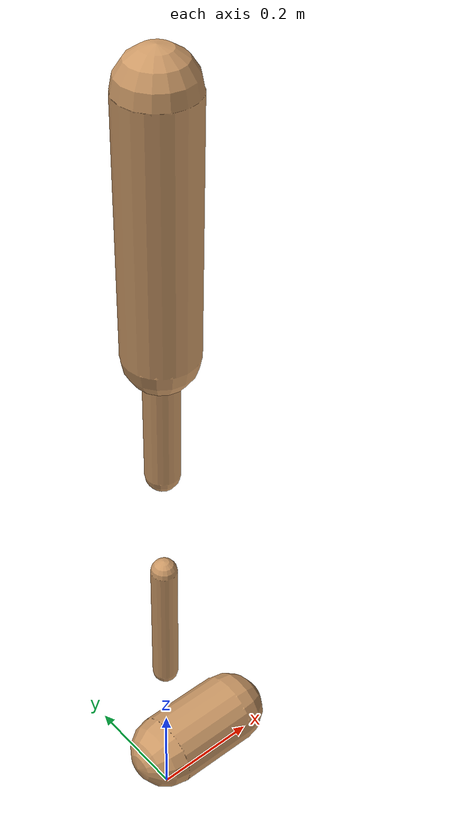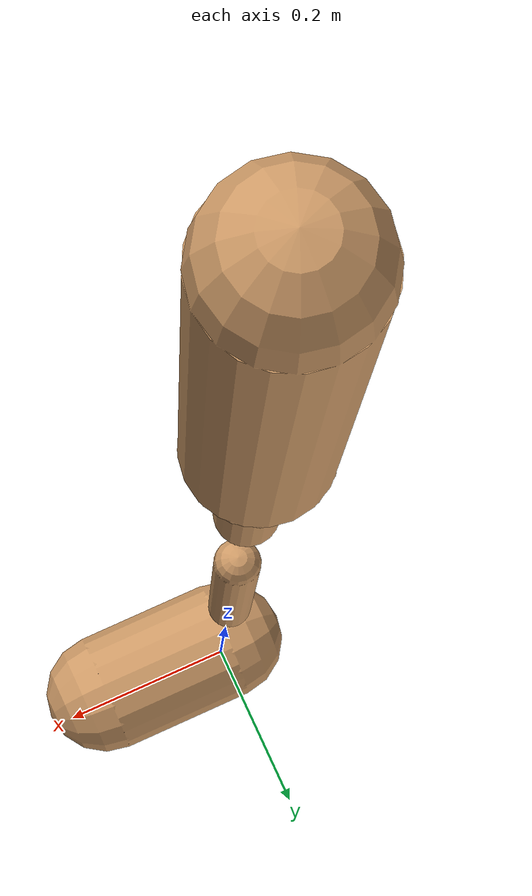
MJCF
<mujoco model="walker2d">
  <compiler angle="degree" coordinate="global" inertiafromgeom="true" />
  <default>
    <joint armature="0.01" damping=".1" limited="true" />
    <geom conaffinity="0" condim="3" contype="1" density="1000" friction="0.8 .1 .1" rgba="0.8 0.6 .4 1" />
  </default>
  <option integrator="RK4" timestep="0.002" />
  <worldbody>

    <body name="torso" pos="0 0 -0.464531513644015">
      <joint armature="0" axis="1 0 0" damping="0" limited="false" name="ignorex" pos="0 0 0" stiffness="0" type="slide" />
      <joint armature="0" axis="0 0 1" damping="0" limited="false" name="ignorez" pos="0 0 0" ref="1.25" stiffness="0" type="slide" />
      <joint armature="0" axis="0 1 0" damping="0" limited="false" name="ignorey" pos="0 0 0" stiffness="0" type="hinge" />
      <geom fromto="0 0 1.45 0 0 1.05" name="torso_geom" size="0.059241624014098854" type="capsule" />
      <body name="thigh">
        <joint axis="0 -1 0" name="thigh_joint" pos="0 0 1.05" range="-150 0" type="hinge" />
        <geom fromto="0.0 0.0 1.05 0.0 0.0 0.8200412433050598" name="thigh_geom" size="0.02828744411714006" type="capsule" />
        <body name="leg" pos="0.0 0.0 0.2200412433050598">
          <joint axis="0 -1 0" name="leg_joint" pos="0 0 0.6" range="-150 0" type="hinge" />
          <geom fromto="0.0 0.0 0.6 0.0 0.0 0.3444902703389553" name="leg_geom" size="0.022629955293712048" type="capsule" />
          <body name="foot" pos="0.0 0.0 0.2444902703389553">
            <joint axis="0 -1 0" name="foot_joint" pos="0 0 0.1" range="-45 45" type="hinge" />
            <geom fromto="0.0 0.0 0.1 0.15279764680483393 0.0 0.1" name="foot_geom" size="0.06961513310794114" type="capsule" />
          </body>
        </body>
      </body>

      <body name="thigh_left">
        <joint axis="0 -1 0" name="thigh_left_joint" pos="0 0 1.05" range="-150 0" type="hinge" />
        <geom fromto="0.0 0.0 1.05 0.0 0.0 0.8200412433050598" name="thigh_left_geom" rgba=".7 .3 .6 1" size="0.02828744411714006" type="capsule" />
        <body name="leg_left" pos="0.0 0.0 0.2200412433050598">
          <joint axis="0 -1 0" name="leg_left_joint" pos="0 0 0.6" range="-150 0" type="hinge" />
          <geom fromto="0.0 0.0 0.6 0.0 0.0 0.3444902703389553" name="leg_left_geom" rgba=".7 .3 .6 1" size="0.022629955293712048" type="capsule" />
          <body name="foot_left" pos="0.0 0.0 0.2444902703389553">
            <joint axis="0 -1 0" name="foot_left_joint" pos="0 0 0.1" range="-45 45" type="hinge" />
            <geom fromto="0.0 0.0 0.1 0.15279764680483393 0.0 0.1" name="foot_left_geom" rgba=".7 .3 .6 1" size="0.06961513310794114" type="capsule" />
          </body>
        </body>
      </body>
    </body>
  </worldbody>
  <actuator>

    <motor ctrllimited="true" ctrlrange="-1.0 1.0" gear="100" joint="thigh_joint" />
    <motor ctrllimited="true" ctrlrange="-1.0 1.0" gear="100" joint="leg_joint" />
    <motor ctrllimited="true" ctrlrange="-1.0 1.0" gear="100" joint="foot_joint" />
    <motor ctrllimited="true" ctrlrange="-1.0 1.0" gear="100" joint="thigh_left_joint" />
    <motor ctrllimited="true" ctrlrange="-1.0 1.0" gear="100" joint="leg_left_joint" />
    <motor ctrllimited="true" ctrlrange="-1.0 1.0" gear="100" joint="foot_left_joint" />

  </actuator>
</mujoco>
